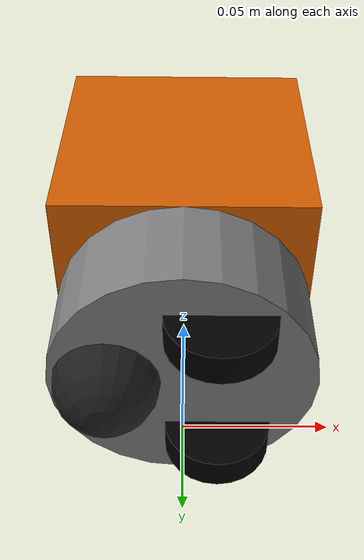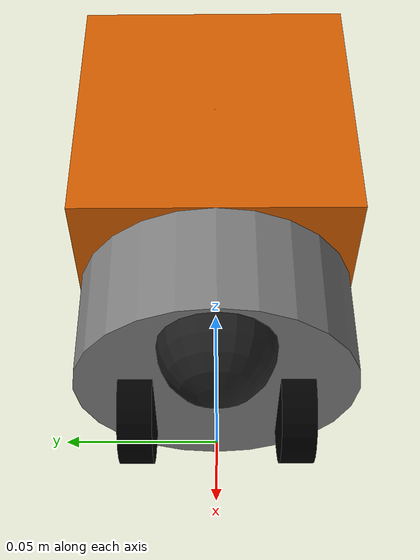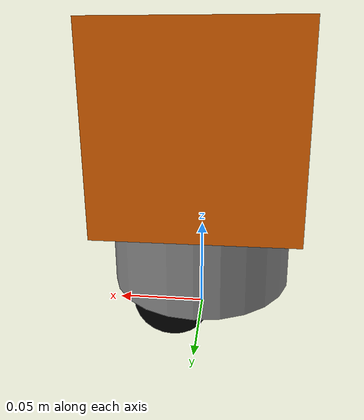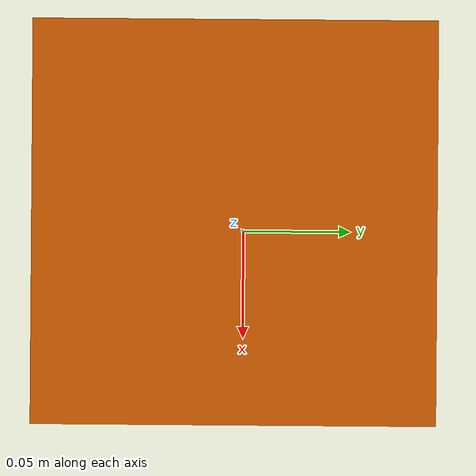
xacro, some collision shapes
<?xml version="1.0" ?>
<robot name="robot_diff_drive" xmlns:xacro="http://ros.org/wiki/xacro">
  <xacro:include filename="$(find robot_diff_drive)/urdf/common_properties.xacro"/>
  <xacro:include filename="$(find robot_diff_drive)/urdf/robot_diff_drive.gazebo.xacro"/>

  <link name="base_footprint"/>

  <link name="base_link">
    <visual>
      <origin xyz="0.0 0.0 0.05" rpy="0 0 0"/>
      <geometry>
        <cylinder length="0.1" radius="0.05"/>
      </geometry>
      <material name="gray"/>
    </visual>

    <collision>
      <origin xyz="0.0 0.0 0.05" rpy="0 0 0"/>
      <geometry>
        <cylinder length="0.1" radius="0.05"/>
      </geometry>
    </collision>

    <inertial>
      <origin xyz="0 0 0" rpy="0 0 0"/>
      <mass value="8.2573504e-01"/>
      <inertia ixx="2.2124416e-03" ixy="-1.2294101e-05" ixz="3.4938785e-05"
               iyy="2.1193702e-03" iyz="-5.0120904e-06"
               izz="2.0064271e-03" />
    </inertial>
  </link>

  <joint name="base_joint" type="fixed">
      <parent link="base_footprint"/>
      <child link="base_link"/>
      <origin xyz="0.0 0.0 0.020" rpy="0 0 0"/>
  </joint>

  <link name="wheel_left_link">
    <visual>
      <origin xyz="0 0 0" rpy="0 0 0"/>
      <geometry>
        <cylinder length="0.012" radius="0.020"/>
      </geometry>
      <material name="black"/>
    </visual>

    <collision>
      <origin xyz="0 0 0" rpy="0 0 0"/>
      <geometry>
        <cylinder length="0.012" radius="0.020"/>
      </geometry>
    </collision>

    <inertial>
      <origin xyz="0 0 0" />
      <mass value="2.8498940e-02" />
      <inertia ixx="1.1175580e-05" ixy="-4.2369783e-11" ixz="-5.9381719e-09"
               iyy="1.1192413e-05" iyz="-1.4400107e-11"
               izz="2.0712558e-05" />
      </inertial>
  </link>

  <joint name="wheel_left_joint" type="continuous">
    <parent link="base_link"/>
    <child link="wheel_left_link"/>
    <origin xyz="0.013 0.028 0.0" rpy="-1.57 0 0"/>
    <axis xyz="0 0 1"/>
  </joint>

  <link name="wheel_right_link">
    <visual>
      <origin xyz="0 0 0" rpy="0 0 0"/>
      <geometry>
        <cylinder length="0.012" radius="0.020"/>
      </geometry>
      <material name="black"/>
    </visual>

    <collision>
      <origin xyz="0 0 0" rpy="0 0 0"/>
      <geometry>
        <cylinder length="0.012" radius="0.020"/>
      </geometry>
    </collision>

    <inertial>
      <origin xyz="0 0 0" />
      <mass value="2.8498940e-02" />
      <inertia ixx="1.1175580e-05" ixy="-4.2369783e-11" ixz="-5.9381719e-09"
               iyy="1.1192413e-05" iyz="-1.4400107e-11"
               izz="2.0712558e-05" />
      </inertial>
  </link>

  <joint name="wheel_right_joint" type="continuous">
    <parent link="base_link"/>
    <child link="wheel_right_link"/>
    <origin xyz="0.013 -0.028 0.0" rpy="-1.57 0 0"/>
    <axis xyz="0 0 1"/>
  </joint>

  <link name="caster_back_link">
    <visual>
      <origin xyz="0 0 0" rpy="0 0 0"/>
      <geometry>
        <sphere radius="0.02"/>
      </geometry>
    </visual>

    <collision>
      <origin xyz="0 0 0" rpy="0 0 0"/>
      <geometry>
        <sphere radius="0.02"/>
      </geometry>
    </collision>

    <inertial>
      <origin xyz="0 0 0" />
      <mass value="0.005" />
      <inertia ixx="0.001" ixy="0.0" ixz="0.0"
               iyy="0.001" iyz="0.0"
               izz="0.001" />
    </inertial>
  </link>

  <joint name="caster_back_joint" type="fixed">
    <parent link="base_link"/>
    <child link="caster_back_link"/>
    <origin xyz="-0.028 0 0.0" rpy="0 0 0"/>
  </joint>

  <!-- Hokuyo LiDAR -->
  <link name="hokuyo_link">
    <visual>
      <geometry>
        <mesh filename="package://robot_diff_drive/meshes/hokuyo.dae"/>
      </geometry>
    </visual>

    <collision>
      <geometry>
        <box size="0.1 0.1 0.1"/>
      </geometry>
    </collision>

    <inertial>
      <mass value="1e-5"/>
      <inertia ixx="1e-6" ixy="0.0" ixz="0.0" iyy="1e-6" iyz="0.0" izz="1e-6"/>
    </inertial>
  </link>

  <joint name="hokuyo_joint" type="fixed">
    <origin xyz="0.0 0.0 0.09"/>
    <parent link="base_link"/>
    <child link="hokuyo_link"/>
  </joint>

</robot>

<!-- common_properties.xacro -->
<robot name="xacro_properties" xmlns:xacro="http://ros.org/wiki/xacro">

  <material name="gray">
    <color rgba="0.5 0.5 0.5 1"/>
  </material>

  <material name="black">
    <color rgba="0 0 0 1"/>
  </material>

</robot>
